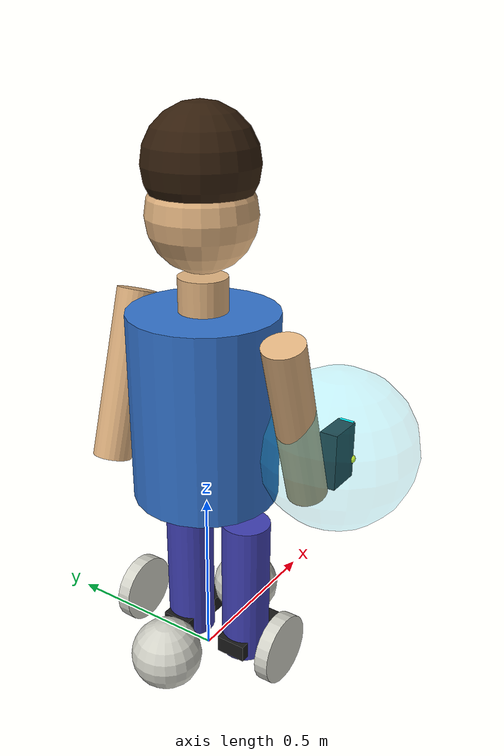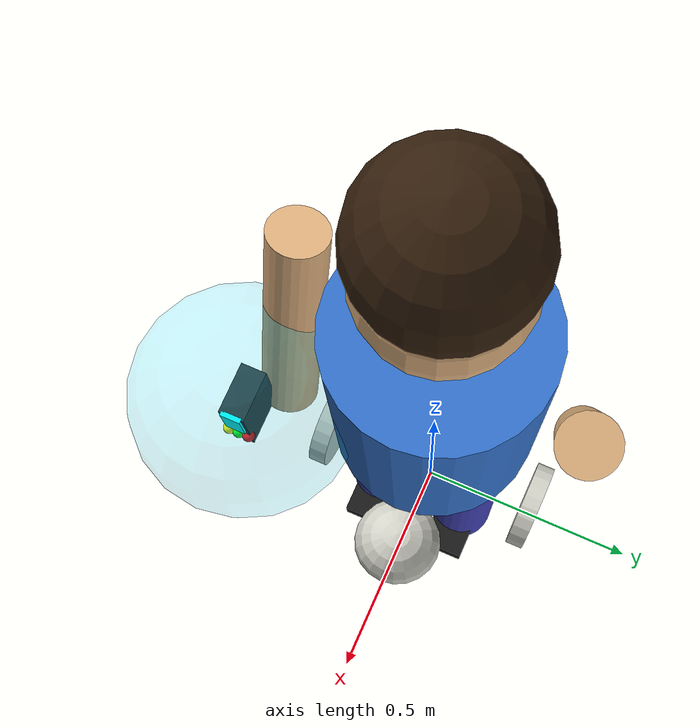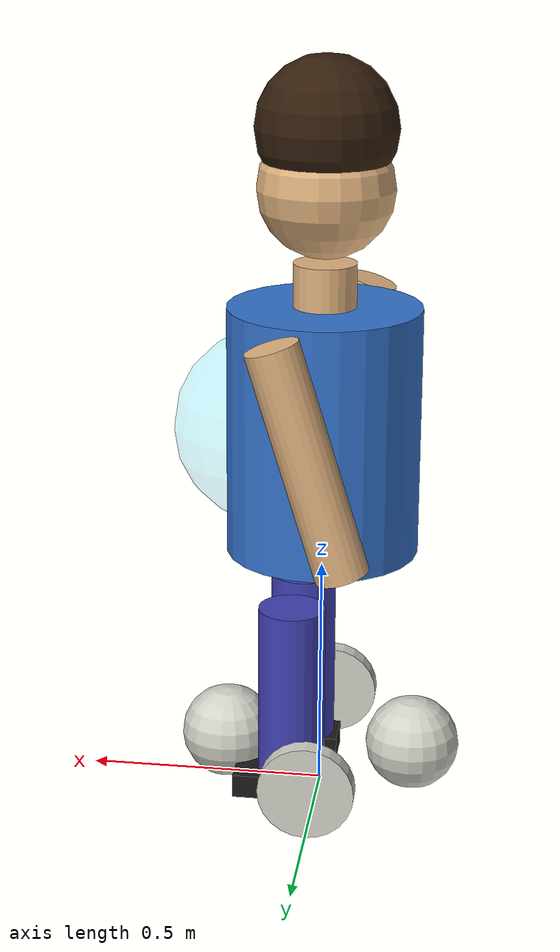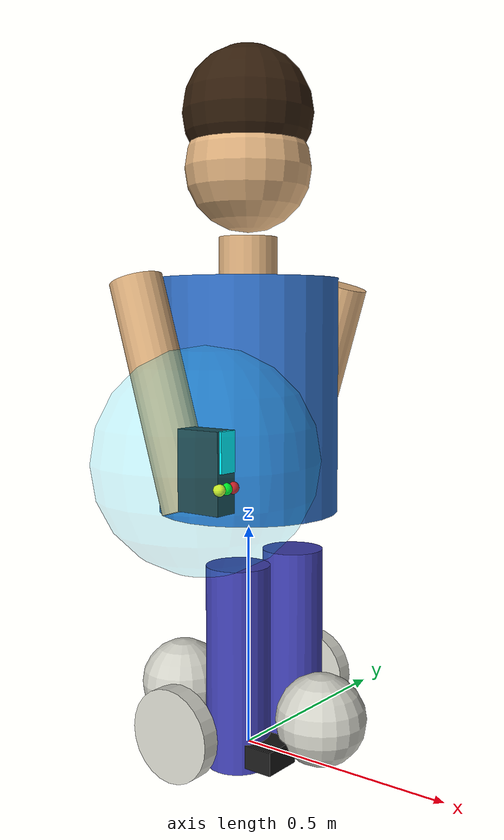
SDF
<?xml version="1.0" ?>
<sdf version="1.10">
  <model name="person">

    <self_collide>false</self_collide>
    <pose>0.0 0.0 0.0 0 0 0</pose>

    <!-- MAIN BODY LINK  -  contains all visual geometry                  -->
    <!-- Origin at ground level z=0                                       -->
    <link name="person">

      <inertial>
        <pose>0 0 0.90 0 0 0</pose>
        <mass>70.0</mass>
        <inertia>
          <ixx>10.0</ixx><iyy>10.0</iyy><izz>20.0</izz>
          <ixy>0</ixy><ixz>0</ixz><iyz>0</iyz>
        </inertia>
      </inertial>

      <!-- ── Collision (single capsule for physics) ── -->
      <collision name="body_col">
        <pose>0 0 0.90 0 0 0</pose>
        <geometry>
          <cylinder><radius>0.22</radius><length>1.4</length></cylinder>
        </geometry>
        <surface>
          <friction>
            <ode>
              <mu>0.01</mu>
              <mu2>0.01</mu2>
            </ode>
          </friction>
        </surface>
      </collision>

      <!-- LEGS                                       -->

      <!-- Left leg -->
      <visual name="left_leg">
        <pose>0.05 0.10 0.22 0 0 0</pose>
        <geometry>
          <cylinder><radius>0.07</radius><length>0.44</length></cylinder>
        </geometry>
        <material>
          <ambient>0.25 0.25 0.70 1</ambient>
          <diffuse>0.25 0.25 0.70 1</diffuse>
        </material>
      </visual>

      <!-- Right leg -->
      <visual name="right_leg">
        <pose>0.05 -0.10 0.22 0 0 0</pose>
        <geometry>
          <cylinder><radius>0.07</radius><length>0.44</length></cylinder>
        </geometry>
        <material>
          <ambient>0.25 0.25 0.70 1</ambient>
          <diffuse>0.25 0.25 0.70 1</diffuse>
        </material>
      </visual>

      <!-- Left shoe -->
      <visual name="left_shoe">
        <pose>0.07 0.10 0.04 0 0 0</pose>
        <geometry>
          <box><size>0.20 0.09 0.05</size></box>
        </geometry>
        <material>
          <ambient>0.1 0.1 0.1 1</ambient>
          <diffuse>0.1 0.1 0.1 1</diffuse>
        </material>
      </visual>

      <!-- Right shoe -->
      <visual name="right_shoe">
        <pose>0.07 -0.10 0.04 0 0 0</pose>
        <geometry>
          <box><size>0.20 0.09 0.05</size></box>
        </geometry>
        <material>
          <ambient>0.1 0.1 0.1 1</ambient>
          <diffuse>0.1 0.1 0.1 1</diffuse>
        </material>
      </visual>

      <!-- TORSO                                      -->
      <visual name="torso">
        <pose>0 0 0.80 0 0 0</pose>
        <geometry>
          <cylinder><radius>0.20</radius><length>0.52</length></cylinder>
        </geometry>
        <material>
          <ambient>0.20 0.45 0.80 1</ambient>
          <diffuse>0.20 0.45 0.80 1</diffuse>
          <specular>0.2 0.2 0.2 1</specular>
        </material>
      </visual>

      <!-- ARMS                                       -->

      <!-- Left arm -->
      <visual name="left_arm">
        <pose>0 0.28 0.82 0 0.3 0</pose>
        <geometry>
          <cylinder><radius>0.055</radius><length>0.48</length></cylinder>
        </geometry>
        <material>
          <ambient>0.88 0.70 0.50 1</ambient>
          <diffuse>0.88 0.70 0.50 1</diffuse>
        </material>
      </visual>

      <!-- Right arm - holds the UWB remote -->
      <visual name="right_arm">
        <pose>0 -0.28 0.82 0 -0.3 0</pose>
        <geometry>
          <cylinder><radius>0.055</radius><length>0.48</length></cylinder>
        </geometry>
        <material>
          <ambient>0.88 0.70 0.50 1</ambient>
          <diffuse>0.88 0.70 0.50 1</diffuse>
        </material>
      </visual>

      <!-- NECK                                       -->
      <visual name="neck">
        <pose>0 0 1.10 0 0 0</pose>
        <geometry>
          <cylinder><radius>0.065</radius><length>0.10</length></cylinder>
        </geometry>
        <material>
          <ambient>0.88 0.70 0.50 1</ambient>
          <diffuse>0.88 0.70 0.50 1</diffuse>
        </material>
      </visual>

      <!-- HEAD                                       -->
      <visual name="head">
        <pose>0 0 1.30 0 0 0</pose>
        <geometry>
          <sphere><radius>0.14</radius></sphere>
        </geometry>
        <material>
          <ambient>0.88 0.70 0.50 1</ambient>
          <diffuse>0.88 0.70 0.50 1</diffuse>
        </material>
      </visual>

      <!-- Hair -->
      <visual name="hair">
        <pose>0 0 1.42 0 0 0</pose>
        <geometry>
          <sphere><radius>0.145</radius></sphere>
        </geometry>
        <material>
          <ambient>0.20 0.12 0.05 1</ambient>
          <diffuse>0.20 0.12 0.05 1</diffuse>
        </material>
      </visual>

      <!-- UWB REMOTE TAG                             -->
      <!-- Held in right hand at waist height         -->
      <!-- Glowing cyan = active UWB signal           -->

      <!-- Remote housing -->
      <visual name="uwb_remote_body">
        <pose>0.15 -0.32 0.68 0 0 0</pose>
        <geometry>
          <box><size>0.10 0.05 0.16</size></box>
        </geometry>
        <material>
          <ambient>0.15 0.15 0.15 1</ambient>
          <diffuse>0.15 0.15 0.15 1</diffuse>
          <specular>0.5 0.5 0.5 1</specular>
        </material>
      </visual>

      <!-- Remote screen - glowing cyan -->
      <visual name="uwb_remote_screen">
        <pose>0.20 -0.32 0.72 0 0 0</pose>
        <geometry>
          <box><size>0.01 0.04 0.08</size></box>
        </geometry>
        <material>
          <ambient>0.0  1.0  1.0  1.0</ambient>
          <diffuse>0.0  1.0  1.0  1.0</diffuse>
          <emissive>0.0 0.9  1.0  1.0</emissive>
        </material>
      </visual>

      <!-- Button 1 (STOP) - red -->
      <visual name="btn_stop">
        <pose>0.20 -0.30 0.65 0 0 0</pose>
        <geometry><sphere><radius>0.012</radius></sphere></geometry>
        <material>
          <ambient>1.0 0.0 0.0 1</ambient>
          <diffuse>1.0 0.0 0.0 1</diffuse>
          <emissive>0.8 0.0 0.0 1</emissive>
        </material>
      </visual>

      <!-- Button 2 (FOLLOW) - green -->
      <visual name="btn_follow">
        <pose>0.20 -0.32 0.65 0 0 0</pose>
        <geometry><sphere><radius>0.012</radius></sphere></geometry>
        <material>
          <ambient>0.0 1.0 0.0 1</ambient>
          <diffuse>0.0 1.0 0.0 1</diffuse>
          <emissive>0.0 0.8 0.0 1</emissive>
        </material>
      </visual>

      <!-- Button 3 (IDLE) - yellow -->
      <visual name="btn_idle">
        <pose>0.20 -0.34 0.65 0 0 0</pose>
        <geometry><sphere><radius>0.012</radius></sphere></geometry>
        <material>
          <ambient>1.0 1.0 0.0 1</ambient>
          <diffuse>1.0 1.0 0.0 1</diffuse>
          <emissive>0.8 0.8 0.0 1</emissive>
        </material>
      </visual>

      <!-- UWB signal inner glow -->
      <visual name="uwb_signal_inner">
        <pose>0.15 -0.32 0.70 0 0 0</pose>
        <geometry><sphere><radius>0.12</radius></sphere></geometry>
        <material>
          <ambient>0.0  1.0  1.0  0.4</ambient>
          <diffuse>0.0  1.0  1.0  0.4</diffuse>
          <emissive>0.0 0.9  1.0  1.0</emissive>
        </material>
        <transparency>0.60</transparency>
      </visual>

      <!-- UWB signal outer glow -->
      <visual name="uwb_signal_outer">
        <pose>0.15 -0.32 0.70 0 0 0</pose>
        <geometry><sphere><radius>0.22</radius></sphere></geometry>
        <material>
          <ambient>0.0  0.85 1.0  0.15</ambient>
          <diffuse>0.0  0.85 1.0  0.15</diffuse>
          <emissive>0.0 0.75 1.0  1.0</emissive>
        </material>
        <transparency>0.85</transparency>
      </visual>

    </link>

    <!-- DRIVE WHEELS  -  hidden under body, same colour as floor         -->
    <link name="left_wheel">
      <pose>0 0.25 0.10 1.5708 0 0</pose>
      <inertial>
        <mass>1.0</mass>
        <inertia>
          <ixx>0.005</ixx><iyy>0.005</iyy><izz>0.005</izz>
          <ixy>0</ixy><ixz>0</ixz><iyz>0</iyz>
        </inertia>
      </inertial>
      <collision name="col">
        <geometry>
          <cylinder><radius>0.10</radius><length>0.04</length></cylinder>
        </geometry>
        <surface>
          <friction><ode><mu>1.0</mu><mu2>1.0</mu2></ode></friction>
        </surface>
      </collision>
      <visual name="vis">
        <geometry>
          <cylinder><radius>0.10</radius><length>0.04</length></cylinder>
        </geometry>
        <material>
          <ambient>0.82 0.82 0.78 1</ambient>
          <diffuse>0.82 0.82 0.78 1</diffuse>
        </material>
      </visual>
    </link>

    <link name="right_wheel">
      <pose>0 -0.25 0.10 1.5708 0 0</pose>
      <inertial>
        <mass>1.0</mass>
        <inertia>
          <ixx>0.005</ixx><iyy>0.005</iyy><izz>0.005</izz>
          <ixy>0</ixy><ixz>0</ixz><iyz>0</iyz>
        </inertia>
      </inertial>
      <collision name="col">
        <geometry>
          <cylinder><radius>0.10</radius><length>0.04</length></cylinder>
        </geometry>
        <surface>
          <friction><ode><mu>1.0</mu><mu2>1.0</mu2></ode></friction>
        </surface>
      </collision>
      <visual name="vis">
        <geometry>
          <cylinder><radius>0.10</radius><length>0.04</length></cylinder>
        </geometry>
        <material>
          <ambient>0.82 0.82 0.78 1</ambient>
          <diffuse>0.82 0.82 0.78 1</diffuse>
        </material>
      </visual>
    </link>

    <!-- CASTERS                                                           -->
    <link name="caster_rear">
      <pose>-0.20 0 0.10 0 0 0</pose>
      <inertial>
        <mass>0.5</mass>
        <inertia>
          <ixx>0.002</ixx><iyy>0.002</iyy><izz>0.002</izz>
          <ixy>0</ixy><ixz>0</ixz><iyz>0</iyz>
        </inertia>
      </inertial>
      <collision name="col">
        <geometry><sphere><radius>0.10</radius></sphere></geometry>
        <surface>
          <friction><ode><mu>0.01</mu><mu2>0.01</mu2></ode></friction>
        </surface>
      </collision>
      <visual name="vis">
        <geometry><sphere><radius>0.10</radius></sphere></geometry>
        <material>
          <ambient>0.82 0.82 0.78 1</ambient>
          <diffuse>0.82 0.82 0.78 1</diffuse>
        </material>
      </visual>
    </link>

    <link name="caster_front">
      <pose>0.20 0 0.10 0 0 0</pose>
      <inertial>
        <mass>0.5</mass>
        <inertia>
          <ixx>0.002</ixx><iyy>0.002</iyy><izz>0.002</izz>
          <ixy>0</ixy><ixz>0</ixz><iyz>0</iyz>
        </inertia>
      </inertial>
      <collision name="col">
        <geometry><sphere><radius>0.10</radius></sphere></geometry>
        <surface>
          <friction><ode><mu>0.01</mu><mu2>0.01</mu2></ode></friction>
        </surface>
      </collision>
      <visual name="vis">
        <geometry><sphere><radius>0.10</radius></sphere></geometry>
        <material>
          <ambient>0.82 0.82 0.78 1</ambient>
          <diffuse>0.82 0.82 0.78 1</diffuse>
        </material>
      </visual>
    </link>

    <!-- JOINTS                                                            -->
    <joint name="left_wheel_joint" type="revolute">
      <parent>person</parent>
      <child>left_wheel</child>
      <axis>
        <xyz>0 0 -1</xyz>
        <limit><lower>-1e16</lower><upper>1e16</upper></limit>
        <dynamics><damping>1.5</damping><friction>0.05</friction></dynamics>
      </axis>
    </joint>

    <joint name="right_wheel_joint" type="revolute">
      <parent>person</parent>
      <child>right_wheel</child>
      <axis>
        <xyz>0 0 -1</xyz>
        <limit><lower>-1e16</lower><upper>1e16</upper></limit>
        <dynamics><damping>1.5</damping><friction>0.05</friction></dynamics>
      </axis>
    </joint>

    <joint name="caster_rear_joint" type="fixed">
      <parent>person</parent>
      <child>caster_rear</child>
    </joint>

    <joint name="caster_front_joint" type="fixed">
      <parent>person</parent>
      <child>caster_front</child>
    </joint>

    <!-- PLUGINS                                                           -->
    <plugin filename="gz-sim-diff-drive-system"
            name="gz::sim::systems::DiffDrive">
      <left_joint>left_wheel_joint</left_joint>
      <right_joint>right_wheel_joint</right_joint>
      <wheel_separation>0.50</wheel_separation>
      <wheel_radius>0.10</wheel_radius>
      <max_linear_velocity>1.5</max_linear_velocity>
      <max_angular_velocity>2.0</max_angular_velocity>
      <max_linear_acceleration>2.0</max_linear_acceleration>
      <max_angular_acceleration>0.5</max_angular_acceleration>
      <odom_publish_frequency>20</odom_publish_frequency>
      <topic>person/cmd_vel</topic>
      <odom_topic>person/odom</odom_topic>
      <frame_id>odom</frame_id>
      <child_frame_id>person</child_frame_id>
    </plugin>

    <plugin filename="gz-sim-joint-state-publisher-system"
            name="gz::sim::systems::JointStatePublisher">
      <topic>person/joint_states</topic>
    </plugin>

  </model>
</sdf>
